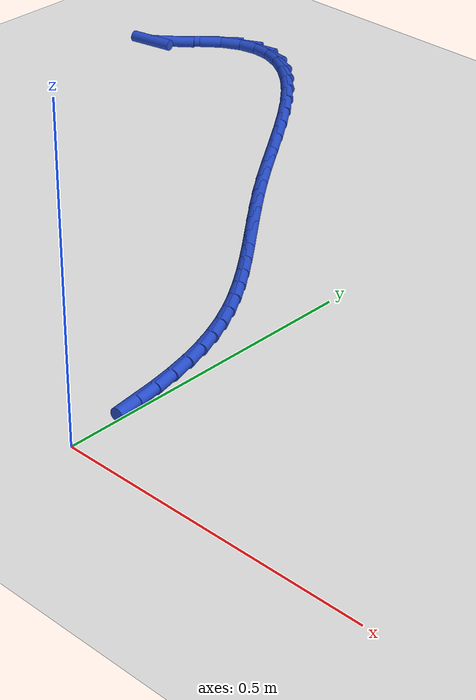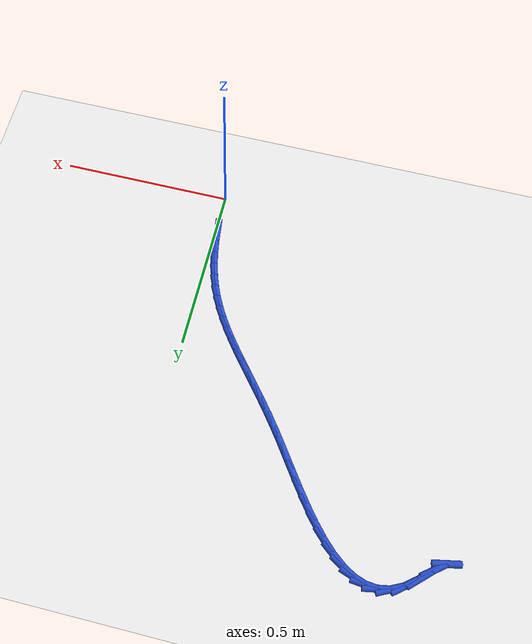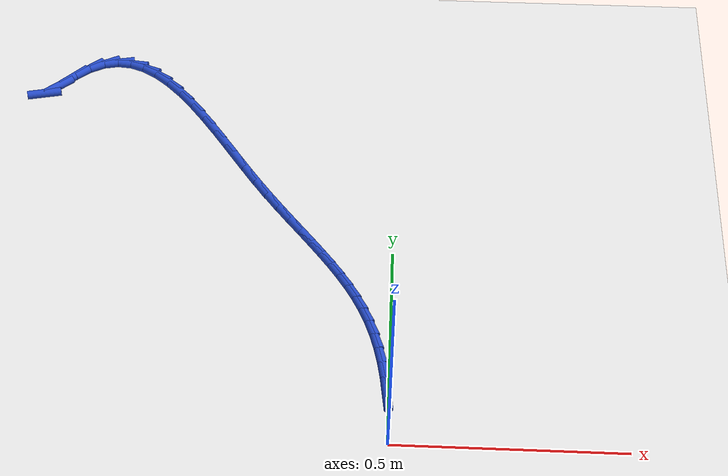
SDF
<sdf version="1.6">
 <world name="default">
  <model name="ground_plane">
   <static>1</static>
   <link name="link">
    <collision name="collision">
     <geometry><plane><normal>0 0 1</normal><size>100 100</size></plane></geometry>
     <surface><friction><ode><mu>100</mu><mu2>50</mu2></ode></friction></surface>
    </collision>
    <visual name="visual">
     <cast_shadows>0</cast_shadows>
     <geometry><plane><normal>0 0 1</normal><size>100 100</size></plane></geometry>
     <material>
      <script><uri>file://media/materials/scripts/gazebo.material</uri><name>Gazebo/WhiteGlow</name></script>
     </material>
    </visual>
   </link>
  </model>
  <model name="line">
   <link name="link_3">
    <pose>-0.005801826759930556 0.11965027237062047 0.01 0 1.57 -1.4443362459925622</pose>
    <collision name="collision">
     <geometry><cylinder><radius>0.01</radius><length>0.08</length></cylinder></geometry>
    </collision>
    <visual name="visual">
     <material>
      <script><name>Gazebo/Blue</name><uri>file://media/materials/scripts/gazebo.material</uri></script>
     </material>
     <geometry><cylinder><radius>0.01</radius><length>0.08</length></cylinder></geometry>
    </visual>
   </link>
   <link name="link_4">
    <pose>-0.01078304228986793 0.1588297011160325 0.01 0 1.57 -1.3991997554756217</pose>
    <collision name="collision">
     <geometry><cylinder><radius>0.01</radius><length>0.08</length></cylinder></geometry>
    </collision>
    <visual name="visual">
     <material>
      <script><name>Gazebo/Blue</name><uri>file://media/materials/scripts/gazebo.material</uri></script>
     </material>
     <geometry><cylinder><radius>0.01</radius><length>0.08</length></cylinder></geometry>
    </visual>
   </link>
   <link name="link_5">
    <pose>-0.017434340909178024 0.19720976144952124 0.01 0 1.57 -1.3491250632339262</pose>
    <collision name="collision">
     <geometry><cylinder><radius>0.01</radius><length>0.08</length></cylinder></geometry>
    </collision>
    <visual name="visual">
     <material>
      <script><name>Gazebo/Blue</name><uri>file://media/materials/scripts/gazebo.material</uri></script>
     </material>
     <geometry><cylinder><radius>0.01</radius><length>0.08</length></cylinder></geometry>
    </visual>
   </link>
   <link name="link_6">
    <pose>-0.025843590488496312 0.23452203093737095 0.01 0 1.57 -1.2931085205411417</pose>
    <collision name="collision">
     <geometry><cylinder><radius>0.01</radius><length>0.08</length></cylinder></geometry>
    </collision>
    <visual name="visual">
     <material>
      <script><name>Gazebo/Blue</name><uri>file://media/materials/scripts/gazebo.material</uri></script>
     </material>
     <geometry><cylinder><radius>0.01</radius><length>0.08</length></cylinder></geometry>
    </visual>
   </link>
   <link name="link_7">
    <pose>-0.03609865889845826 0.2704980871458661 0.01 0 1.57 -1.2300622602418907</pose>
    <collision name="collision">
     <geometry><cylinder><radius>0.01</radius><length>0.08</length></cylinder></geometry>
    </collision>
    <visual name="visual">
     <material>
      <script><name>Gazebo/Blue</name><uri>file://media/materials/scripts/gazebo.material</uri></script>
     </material>
     <geometry><cylinder><radius>0.01</radius><length>0.08</length></cylinder></geometry>
    </visual>
   </link>
   <link name="link_8">
    <pose>-0.04828646433652158 0.30487224631225424 0.01 0 1.57 -1.16303455924778</pose>
    <collision name="collision">
     <geometry><cylinder><radius>0.01</radius><length>0.08</length></cylinder></geometry>
    </collision>
    <visual name="visual">
     <material>
      <script><name>Gazebo/Blue</name><uri>file://media/materials/scripts/gazebo.material</uri></script>
     </material>
     <geometry><cylinder><radius>0.01</radius><length>0.08</length></cylinder></geometry>
    </visual>
   </link>
   <link name="link_9">
    <pose>-0.06242022724012387 0.33759135454210576 0.01 0 1.57 -1.099979973276726</pose>
    <collision name="collision">
     <geometry><cylinder><radius>0.01</radius><length>0.08</length></cylinder></geometry>
    </collision>
    <visual name="visual">
     <material>
      <script><name>Gazebo/Blue</name><uri>file://media/materials/scripts/gazebo.material</uri></script>
     </material>
     <geometry><cylinder><radius>0.01</radius><length>0.08</length></cylinder></geometry>
    </visual>
   </link>
   <link name="link_10">
    <pose>-0.07838812001780793 0.3689628719014119 0.01 0 1.57 -1.0435981428654346</pose>
    <collision name="collision">
     <geometry><cylinder><radius>0.01</radius><length>0.08</length></cylinder></geometry>
    </collision>
    <visual name="visual">
     <material>
      <script><name>Gazebo/Blue</name><uri>file://media/materials/scripts/gazebo.material</uri></script>
     </material>
     <geometry><cylinder><radius>0.01</radius><length>0.08</length></cylinder></geometry>
    </visual>
   </link>
   <link name="link_11">
    <pose>-0.09606618652572865 0.3993292348196423 0.01 0 1.57 -0.9954414647999831</pose>
    <collision name="collision">
     <geometry><cylinder><radius>0.01</radius><length>0.08</length></cylinder></geometry>
    </collision>
    <visual name="visual">
     <material>
      <script><name>Gazebo/Blue</name><uri>file://media/materials/scripts/gazebo.material</uri></script>
     </material>
     <geometry><cylinder><radius>0.01</radius><length>0.08</length></cylinder></geometry>
    </visual>
   </link>
   <link name="link_12">
    <pose>-0.1153304706200408 0.42903287972626597 0.01 0 1.57 -0.9564662723145362</pose>
    <collision name="collision">
     <geometry><cylinder><radius>0.01</radius><length>0.08</length></cylinder></geometry>
    </collision>
    <visual name="visual">
     <material>
      <script><name>Gazebo/Blue</name><uri>file://media/materials/scripts/gazebo.material</uri></script>
     </material>
     <geometry><cylinder><radius>0.01</radius><length>0.08</length></cylinder></geometry>
    </visual>
   </link>
   <link name="link_13">
    <pose>-0.1360570161568993 0.4584162430507523 0.01 0 1.57 -0.9270621116328968</pose>
    <collision name="collision">
     <geometry><cylinder><radius>0.01</radius><length>0.08</length></cylinder></geometry>
    </collision>
    <visual name="visual">
     <material>
      <script><name>Gazebo/Blue</name><uri>file://media/materials/scripts/gazebo.material</uri></script>
     </material>
     <geometry><cylinder><radius>0.01</radius><length>0.08</length></cylinder></geometry>
    </visual>
   </link>
   <link name="link_14">
    <pose>-0.15812186699245898 0.4878217612225703 0.01 0 1.57 -0.907149144727668</pose>
    <collision name="collision">
     <geometry><cylinder><radius>0.01</radius><length>0.08</length></cylinder></geometry>
    </collision>
    <visual name="visual">
     <material>
      <script><name>Gazebo/Blue</name><uri>file://media/materials/scripts/gazebo.material</uri></script>
     </material>
     <geometry><cylinder><radius>0.01</radius><length>0.08</length></cylinder></geometry>
    </visual>
   </link>
   <link name="link_15">
    <pose>-0.1814010669828746 0.5175918706711895 0.01 0 1.57 -0.8962978508619215</pose>
    <collision name="collision">
     <geometry><cylinder><radius>0.01</radius><length>0.08</length></cylinder></geometry>
    </collision>
    <visual name="visual">
     <material>
      <script><name>Gazebo/Blue</name><uri>file://media/materials/scripts/gazebo.material</uri></script>
     </material>
     <geometry><cylinder><radius>0.01</radius><length>0.08</length></cylinder></geometry>
    </visual>
   </link>
   <link name="link_16">
    <pose>-0.20577065998430114 0.5480690078260791 0.01 0 1.57 -0.8938399640405668</pose>
    <collision name="collision">
     <geometry><cylinder><radius>0.01</radius><length>0.08</length></cylinder></geometry>
    </collision>
    <visual name="visual">
     <material>
      <script><name>Gazebo/Blue</name><uri>file://media/materials/scripts/gazebo.material</uri></script>
     </material>
     <geometry><cylinder><radius>0.01</radius><length>0.08</length></cylinder></geometry>
    </visual>
   </link>
   <link name="link_17">
    <pose>-0.23110668985289326 0.5795956091167083 0.01 0 1.57 -0.8989571048070066</pose>
    <collision name="collision">
     <geometry><cylinder><radius>0.01</radius><length>0.08</length></cylinder></geometry>
    </collision>
    <visual name="visual">
     <material>
      <script><name>Gazebo/Blue</name><uri>file://media/materials/scripts/gazebo.material</uri></script>
     </material>
     <geometry><cylinder><radius>0.01</radius><length>0.08</length></cylinder></geometry>
    </visual>
   </link>
   <link name="link_18">
    <pose>-0.25728520044480596 0.6125141109725463 0.01 0 1.57 -0.9107459610765454</pose>
    <collision name="collision">
     <geometry><cylinder><radius>0.01</radius><length>0.08</length></cylinder></geometry>
    </collision>
    <visual name="visual">
     <material>
      <script><name>Gazebo/Blue</name><uri>file://media/materials/scripts/gazebo.material</uri></script>
     </material>
     <geometry><cylinder><radius>0.01</radius><length>0.08</length></cylinder></geometry>
    </visual>
   </link>
   <link name="link_19">
    <pose>-0.2841822356161941 0.6471669498230627 0.01 0 1.57 -0.9282648294291331</pose>
    <collision name="collision">
     <geometry><cylinder><radius>0.01</radius><length>0.08</length></cylinder></geometry>
    </collision>
    <visual name="visual">
     <material>
      <script><name>Gazebo/Blue</name><uri>file://media/materials/scripts/gazebo.material</uri></script>
     </material>
     <geometry><cylinder><radius>0.01</radius><length>0.08</length></cylinder></geometry>
    </visual>
   </link>
   <link name="link_20">
    <pose>-0.31167383922321235 0.6838965620977262 0.01 0 1.57 -0.950074335394609</pose>
    <collision name="collision">
     <geometry><cylinder><radius>0.01</radius><length>0.08</length></cylinder></geometry>
    </collision>
    <visual name="visual">
     <material>
      <script><name>Gazebo/Blue</name><uri>file://media/materials/scripts/gazebo.material</uri></script>
     </material>
     <geometry><cylinder><radius>0.01</radius><length>0.08</length></cylinder></geometry>
    </visual>
   </link>
   <link name="link_21">
    <pose>-0.33963944445947075 0.7230093221381866 0.01 0 1.57 -0.9664072503207561</pose>
    <collision name="collision">
     <geometry><cylinder><radius>0.01</radius><length>0.08</length></cylinder></geometry>
    </collision>
    <visual name="visual">
     <material>
      <script><name>Gazebo/Blue</name><uri>file://media/materials/scripts/gazebo.material</uri></script>
     </material>
     <geometry><cylinder><radius>0.01</radius><length>0.08</length></cylinder></geometry>
    </visual>
   </link>
   <link name="link_22">
    <pose>-0.3680243215104106 0.7641111076808196 0.01 0 1.57 -0.9702524257304159</pose>
    <collision name="collision">
     <geometry><cylinder><radius>0.01</radius><length>0.08</length></cylinder></geometry>
    </collision>
    <visual name="visual">
     <material>
      <script><name>Gazebo/Blue</name><uri>file://media/materials/scripts/gazebo.material</uri></script>
     </material>
     <geometry><cylinder><radius>0.01</radius><length>0.08</length></cylinder></geometry>
    </visual>
   </link>
   <link name="link_23">
    <pose>-0.3968334756852742 0.8061722228995774 0.01 0 1.57 -0.9622613198069169</pose>
    <collision name="collision">
     <geometry><cylinder><radius>0.01</radius><length>0.08</length></cylinder></geometry>
    </collision>
    <visual name="visual">
     <material>
      <script><name>Gazebo/Blue</name><uri>file://media/materials/scripts/gazebo.material</uri></script>
     </material>
     <geometry><cylinder><radius>0.01</radius><length>0.08</length></cylinder></geometry>
    </visual>
   </link>
   <link name="link_24">
    <pose>-0.4260740776370349 0.8481399330067232 0.01 0 1.57 -0.9421473699221572</pose>
    <collision name="collision">
     <geometry><cylinder><radius>0.01</radius><length>0.08</length></cylinder></geometry>
    </collision>
    <visual name="visual">
     <material>
      <script><name>Gazebo/Blue</name><uri>file://media/materials/scripts/gazebo.material</uri></script>
     </material>
     <geometry><cylinder><radius>0.01</radius><length>0.08</length></cylinder></geometry>
    </visual>
   </link>
   <link name="link_25">
    <pose>-0.45575329801866515 0.8889615032145198 0.01 0 1.57 -0.90838118942373</pose>
    <collision name="collision">
     <geometry><cylinder><radius>0.01</radius><length>0.08</length></cylinder></geometry>
    </collision>
    <visual name="visual">
     <material>
      <script><name>Gazebo/Blue</name><uri>file://media/materials/scripts/gazebo.material</uri></script>
     </material>
     <geometry><cylinder><radius>0.01</radius><length>0.08</length></cylinder></geometry>
    </visual>
   </link>
   <link name="link_26">
    <pose>-0.4858783074831382 0.9275841987352317 0.01 0 1.57 -0.8579496805630122</pose>
    <collision name="collision">
     <geometry><cylinder><radius>0.01</radius><length>0.08</length></cylinder></geometry>
    </collision>
    <visual name="visual">
     <material>
      <script><name>Gazebo/Blue</name><uri>file://media/materials/scripts/gazebo.material</uri></script>
     </material>
     <geometry><cylinder><radius>0.01</radius><length>0.08</length></cylinder></geometry>
    </visual>
   </link>
   <link name="link_27">
    <pose>-0.516456276683427 0.9629552847811216 0.01 0 1.57 -0.7858593543704875</pose>
    <collision name="collision">
     <geometry><cylinder><radius>0.01</radius><length>0.08</length></cylinder></geometry>
    </collision>
    <visual name="visual">
     <material>
      <script><name>Gazebo/Blue</name><uri>file://media/materials/scripts/gazebo.material</uri></script>
     </material>
     <geometry><cylinder><radius>0.01</radius><length>0.08</length></cylinder></geometry>
    </visual>
   </link>
   <link name="link_28">
    <pose>-0.5474943762725042 0.9940220265644525 0.01 0 1.57 -0.6844451093726458</pose>
    <collision name="collision">
     <geometry><cylinder><radius>0.01</radius><length>0.08</length></cylinder></geometry>
    </collision>
    <visual name="visual">
     <material>
      <script><name>Gazebo/Blue</name><uri>file://media/materials/scripts/gazebo.material</uri></script>
     </material>
     <geometry><cylinder><radius>0.01</radius><length>0.08</length></cylinder></geometry>
    </visual>
   </link>
   <link name="link_29">
    <pose>-0.5789997769033425 1.0197316892974875 0.01 0 1.57 -0.5429889634100166</pose>
    <collision name="collision">
     <geometry><cylinder><radius>0.01</radius><length>0.08</length></cylinder></geometry>
    </collision>
    <visual name="visual">
     <material>
      <script><name>Gazebo/Blue</name><uri>file://media/materials/scripts/gazebo.material</uri></script>
     </material>
     <geometry><cylinder><radius>0.01</radius><length>0.08</length></cylinder></geometry>
    </visual>
   </link>
   <link name="link_30">
    <pose>-0.6109796492289155 1.039031538192491 0.01 0 1.57 -0.3496716486804681</pose>
    <collision name="collision">
     <geometry><cylinder><radius>0.01</radius><length>0.08</length></cylinder></geometry>
    </collision>
    <visual name="visual">
     <material>
      <script><name>Gazebo/Blue</name><uri>file://media/materials/scripts/gazebo.material</uri></script>
     </material>
     <geometry><cylinder><radius>0.01</radius><length>0.08</length></cylinder></geometry>
    </visual>
   </link>
   <link name="link_31">
    <pose>-0.6434411639021953 1.050868838461725 0.01 0 1.57 -0.10047941065587637</pose>
    <collision name="collision">
     <geometry><cylinder><radius>0.01</radius><length>0.08</length></cylinder></geometry>
    </collision>
    <visual name="visual">
     <material>
      <script><name>Gazebo/Blue</name><uri>file://media/materials/scripts/gazebo.material</uri></script>
     </material>
     <geometry><cylinder><radius>0.01</radius><length>0.08</length></cylinder></geometry>
    </visual>
   </link>
   <link name="link_32">
    <pose>-0.6763914915761555 1.0541908553174542 0.01 0 1.57 0.18462051242492358</pose>
    <collision name="collision">
     <geometry><cylinder><radius>0.01</radius><length>0.08</length></cylinder></geometry>
    </collision>
    <visual name="visual">
     <material>
      <script><name>Gazebo/Blue</name><uri>file://media/materials/scripts/gazebo.material</uri></script>
     </material>
     <geometry><cylinder><radius>0.01</radius><length>0.08</length></cylinder></geometry>
    </visual>
   </link>
   <link name="link_33">
    <pose>-0.7098378029037689 1.0479448539719405 0.01 0 1.57 0.46109992126042093</pose>
    <collision name="collision">
     <geometry><cylinder><radius>0.01</radius><length>0.08</length></cylinder></geometry>
    </collision>
    <visual name="visual">
     <material>
      <script><name>Gazebo/Blue</name><uri>file://media/materials/scripts/gazebo.material</uri></script>
     </material>
     <geometry><cylinder><radius>0.01</radius><length>0.08</length></cylinder></geometry>
    </visual>
   </link>
   <link name="link_34">
    <pose>-0.7437872685380078 1.0310780996374482 0.01 0 1.57 0.6827527447862716</pose>
    <collision name="collision">
     <geometry><cylinder><radius>0.01</radius><length>0.08</length></cylinder></geometry>
    </collision>
    <visual name="visual">
     <material>
      <script><name>Gazebo/Blue</name><uri>file://media/materials/scripts/gazebo.material</uri></script>
     </material>
     <geometry><cylinder><radius>0.01</radius><length>0.08</length></cylinder></geometry>
    </visual>
   </link>
   <link name="link_35">
    <pose>-0.7781378011379877 1.0031434083678188 0.01 0 1.57 0.7666449596925557</pose>
    <collision name="collision">
     <geometry><cylinder><radius>0.01</radius><length>0.08</length></cylinder></geometry>
    </collision>
    <visual name="visual">
     <material>
      <script><name>Gazebo/Blue</name><uri>file://media/materials/scripts/gazebo.material</uri></script>
     </material>
     <geometry><cylinder><radius>0.01</radius><length>0.08</length></cylinder></geometry>
    </visual>
   </link>
   <link name="link_36">
    <pose>-0.811460425688177 0.9710477304059804 0.01 0 1.57 0.6841420462492547</pose>
    <collision name="collision">
     <geometry><cylinder><radius>0.01</radius><length>0.08</length></cylinder></geometry>
    </collision>
    <visual name="visual">
     <material>
      <script><name>Gazebo/Blue</name><uri>file://media/materials/scripts/gazebo.material</uri></script>
     </material>
     <geometry><cylinder><radius>0.01</radius><length>0.08</length></cylinder></geometry>
    </visual>
   </link>
   <link name="link_37">
    <pose>-0.8414423627658422 0.9465964081735322 0.01 0 1.57 0.20033806602521045</pose>
    <collision name="collision">
     <geometry><cylinder><radius>0.01</radius><length>0.08</length></cylinder></geometry>
    </collision>
    <visual name="visual">
     <material>
      <script><name>Gazebo/Blue</name><uri>file://media/materials/scripts/gazebo.material</uri></script>
     </material>
     <geometry><cylinder><radius>0.01</radius><length>0.08</length></cylinder></geometry>
    </visual>
   </link>
  </model>
 </world>
</sdf>
